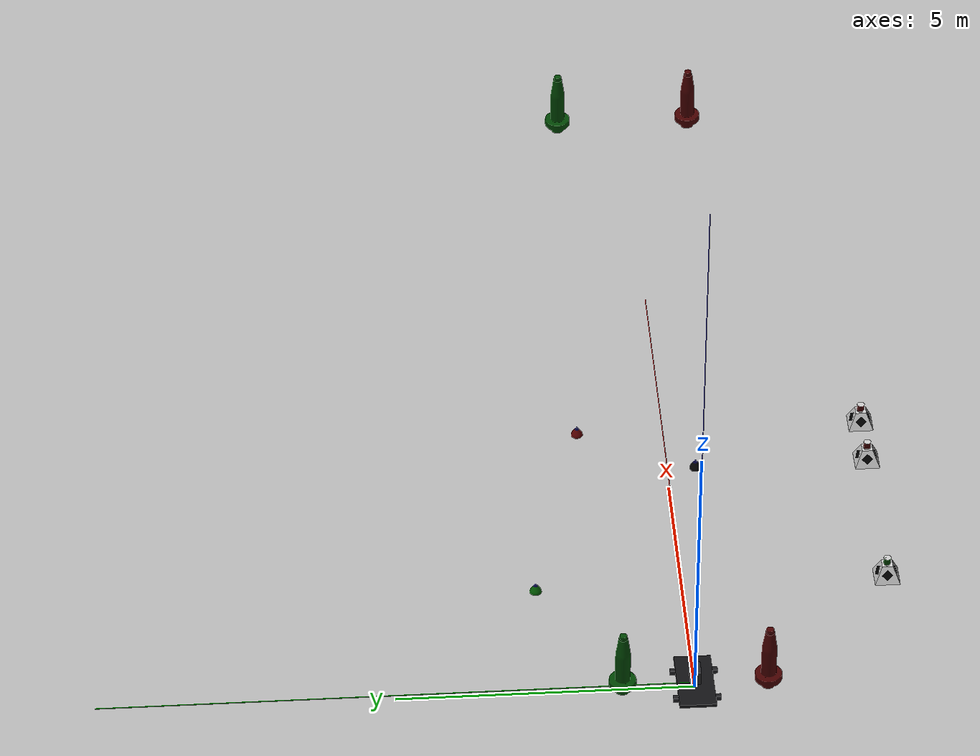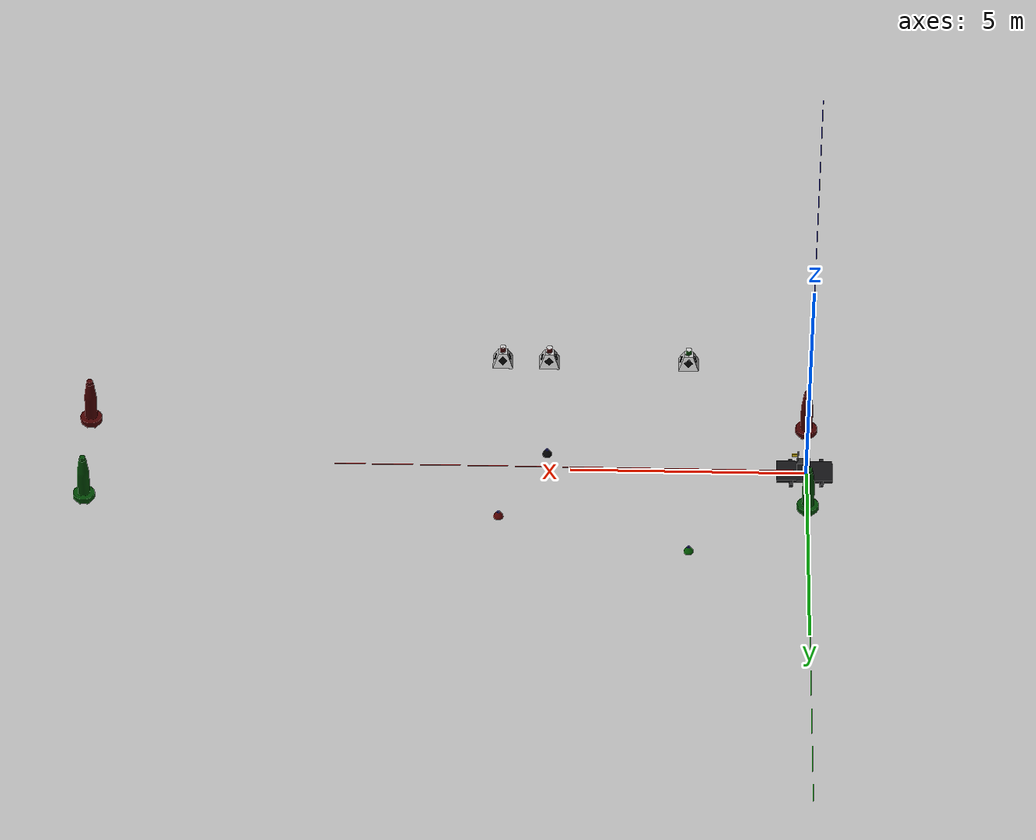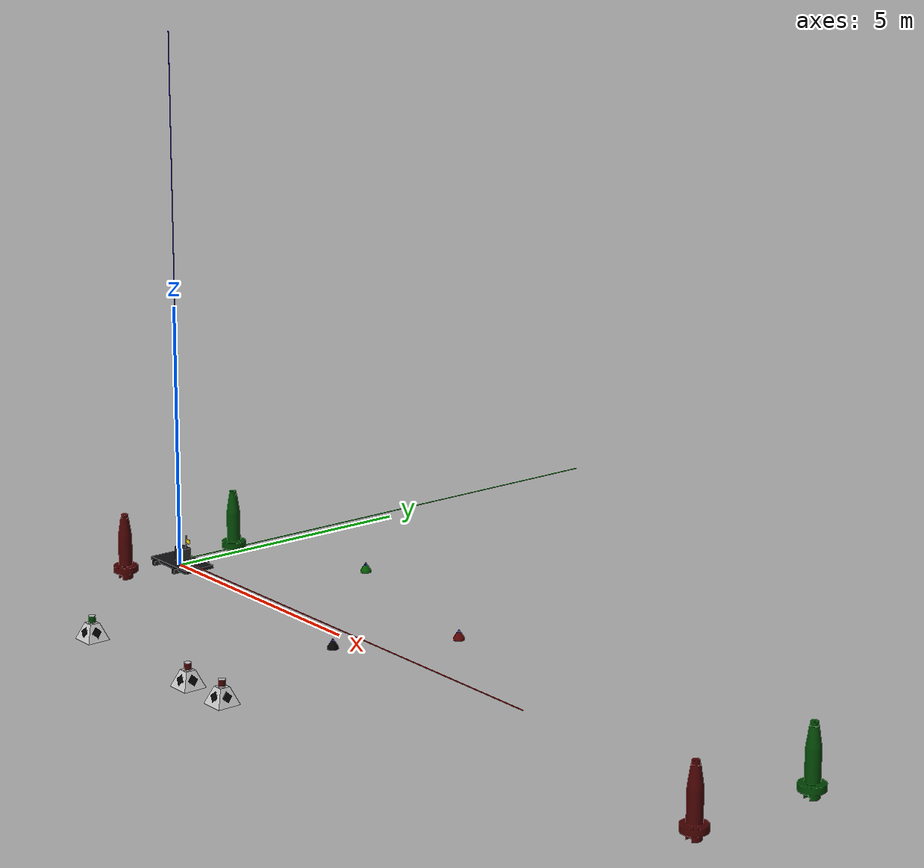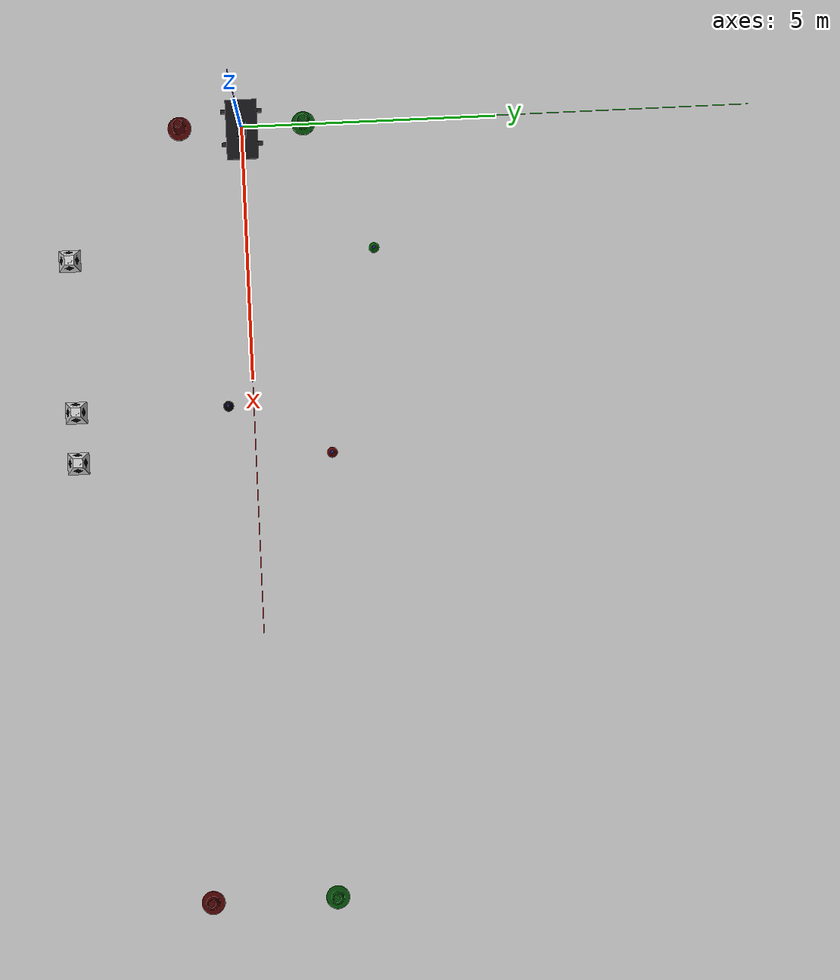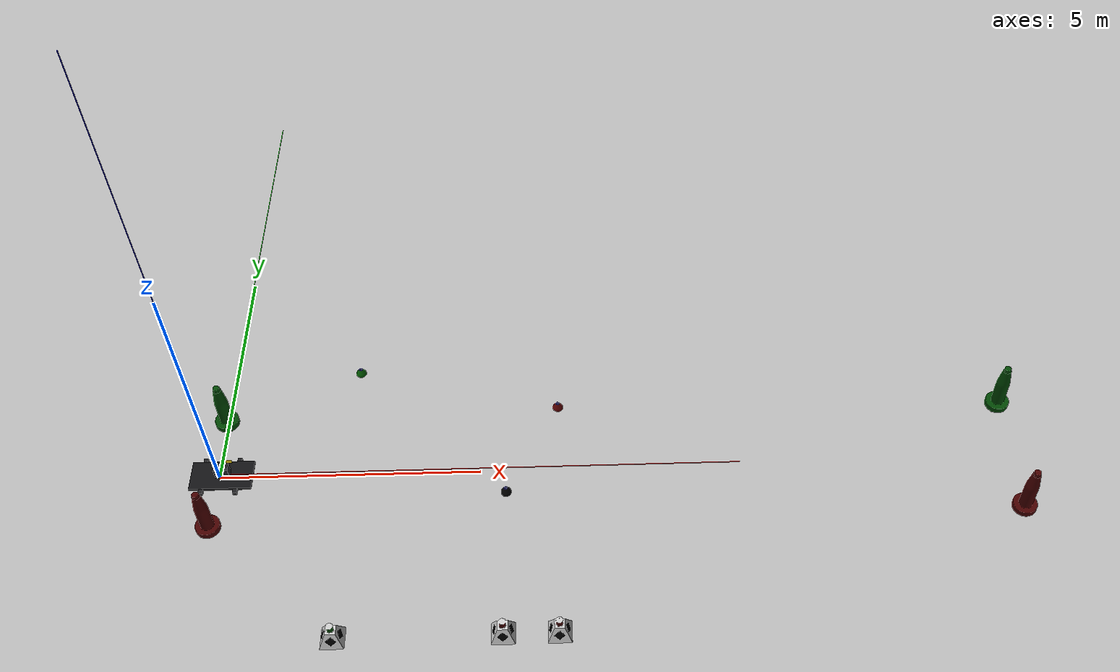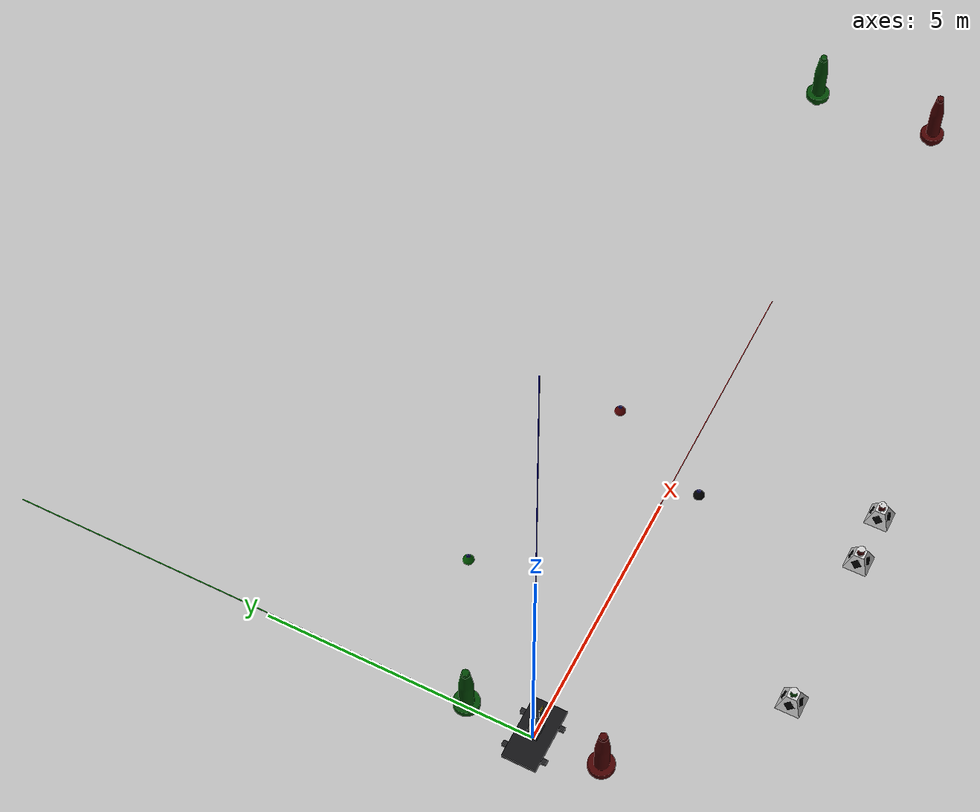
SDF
<?xml version="1.0" ?>
<sdf version="1.6">
  <world name="aquatonomous_course">
    <plugin filename="gz-sim-physics-system" name="gz::sim::systems::Physics"></plugin>
    <plugin filename="gz-sim-sensors-system" name="gz::sim::systems::Sensors">
      <render_engine>ogre2</render_engine>
      <background_color>0.8 0.8 0.8</background_color>
    </plugin>
    <plugin filename="gz-sim-scene-broadcaster-system" name="gz::sim::systems::SceneBroadcaster"></plugin>
    <plugin filename="gz-sim-user-commands-system" name="gz::sim::systems::UserCommands"></plugin>
    <plugin filename="gz-sim-imu-system" name="gz::sim::systems::Imu"></plugin>

    <scene>
      <ambient>1.0 1.0 1.0</ambient>
      <background>0.8 0.8 0.8</background>
      <sky></sky>
    </scene>

    <light type="directional" name="sun">
      <cast_shadows>true</cast_shadows>
      <pose>0 0 10 0 0 0</pose>
      <diffuse>0.8 0.8 0.8 1</diffuse>
      <specular>0.6 0.6 0.6 1</specular>
      <direction>-0.5 0.1 -0.9</direction>
    </light>

    <include>
      <pose>0 0 0 0 0 0</pose>
      <uri>model://waves</uri>
    </include>

    <model name="axes">
      <static>1</static>
      <link name="link">
        <visual name="r">
          <cast_shadows>0</cast_shadows>
          <pose>5 0 0.1 0 0 0</pose>
          <geometry><box><size>10 0.01 0.01</size></box></geometry>
          <material>
            <ambient>1 0 0 1</ambient>
            <diffuse>1 0 0 1</diffuse>
            <emissive>1 0 0 1</emissive>
          </material>
        </visual>
        <visual name="g">
          <cast_shadows>0</cast_shadows>
          <pose>0 5 0.1 0 0 0</pose>
          <geometry><box><size>0.01 10 0.01</size></box></geometry>
          <material>
            <ambient>0 1 0 1</ambient>
            <diffuse>0 1 0 1</diffuse>
            <emissive>0 1 0 1</emissive>
          </material>
        </visual>
        <visual name="b">
          <cast_shadows>0</cast_shadows>
          <pose>0 0 5.1 0 0 0</pose>
          <geometry><box><size>0.01 0.01 10</size></box></geometry>
          <material>
            <ambient>0 0 1 1</ambient>
            <diffuse>0 0 1 1</diffuse>
            <emissive>0 0 1 1</emissive>
          </material>
        </visual>
      </link>
    </model>

    <include>
      <pose>0 0 0 0 0 0</pose>
      <uri>model://ourboat</uri>
    </include>

    <include>
      <name>GreenRopehold_0</name>
      <pose>2.50 2.50 0 0 0 0</pose>
      <uri>model://GreenRopehold</uri>
    </include>
    <include>
      <name>ColourIndicatorGreen_1</name>
      <pose>2.50 -3.50 0 0 0 0</pose>
      <uri>model://ColourIndicatorGreen</uri>
    </include>
    <!-- Gate 1: red left, green right, 8 ft (2.44 m) apart -->
    <include>
      <name>RedSurMark_2</name>
      <pose>0 -1.22 0 0 0 0</pose>
      <uri>model://RedSurMark</uri>
    </include>
    <include>
      <name>GreenSurMark_6</name>
      <pose>0 1.22 0 0 0 0</pose>
      <uri>model://GreenSurMark</uri>
    </include>
    <include>
      <name>BlackRopehold_3</name>
      <pose>5.50 -0.50 0 0 0 0</pose>
      <uri>model://BlackRopehold</uri>
    </include>
    <include>
      <name>ColourIndicatorRed_4</name>
      <pose>5.50 -3.50 0 0 0 0</pose>
      <uri>model://ColourIndicatorRed</uri>
    </include>
    <include>
      <name>ColourIndicatorRed_7</name>
      <pose>6.50 -3.50 0 0 0 0</pose>
      <uri>model://ColourIndicatorRed</uri>
    </include>
    <include>
      <name>RedRopehold_5</name>
      <pose>6.50 1.50 0 0 0 0</pose>
      <uri>model://RedRopehold</uri>
    </include>
    <!-- Gate 2: 50 ft (15.24 m) after gate 1, same 8 ft width -->
    <include>
      <name>RedSurMark_3</name>
      <pose>15.24 -1.22 0 0 0 0</pose>
      <uri>model://RedSurMark</uri>
    </include>
    <include>
      <name>GreenSurMark_7</name>
      <pose>15.24 1.22 0 0 0 0</pose>
      <uri>model://GreenSurMark</uri>
    </include>
  </world>
</sdf>

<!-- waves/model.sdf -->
<sdf version="1.6">
  <model name="waves">
    <static>true</static>
    <link name="link">
      <visual name= "wave_visual">
        <geometry>
          <mesh>
            <uri>meshes/mesh.dae</uri>
          </mesh>
        </geometry>
        <plugin
            filename="libWaveVisual.so"
            name="ignition::gazebo::systems::WaveVisual">
          <shader>
            <vertex>materials/programs/GerstnerWaves_vs_330.glsl</vertex>
            <fragment>materials/programs/GerstnerWaves_fs_330.glsl</fragment>
          </shader>
          <wavefield>
            <size>1000 1000</size>
            <cell_count>50 50</cell_count>
            <wave>
              <model>PMS</model>
              <period>5</period>
              <number>3</number>
              <scale>5.1</scale>
              <gain>0.3</gain>
              <direction>1 0</direction>
              <angle>0.4</angle>
              <tau>2.0</tau>
              <amplitude>0.0</amplitude>
              <steepness>0.0</steepness>
            </wave>
          </wavefield>
        </plugin>
        <visibility_flags>8</visibility_flags>
      </visual>
    </link>
  </model>
</sdf>

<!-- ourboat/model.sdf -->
<sdf version="1.9">
  <model name="ourboat">
    <link name="base_link">
      <inertial>
        <pose>-0.05 0 -0.15 0 0 0</pose>
        <mass>30.0</mass>
        <inertia>
          <ixx>2.42369</ixx>
          <ixy>0</ixy>
          <ixz>0</ixz>
          <iyy>3.9235025</iyy>
          <iyz>0</iyz>
          <izz>5.6403125</izz>
        </inertia>
      </inertial>
      <collision name="hull_collision">
        <geometry>
          <mesh>
            <uri>models://ourboat/meshes/blueboat_hull_collision.stl</uri>
          </mesh>
        </geometry>
      </collision>
      <visual name="hull_visual">
        <geometry>
          <mesh>
            <uri>models://ourboat/meshes/blueboat_hull_collision.stl</uri>
          </mesh>
        </geometry>
        <material>
          <diffuse>0 0 1 1</diffuse>
          <ambient>1 0 1 1</ambient>
          <specular>0.7 0.7 0.7 1</specular>
          <pbr>
            <metal>
              <metalness>0.5</metalness>
              <roughness>0.5</roughness>
            </metal>
          </pbr>
        </material>
      </visual>
      <!-- Safe primitive visuals restore the missing bridge/deck silhouette
           without relying on the crash-prone COLLADA meshes. -->
      <visual name="deck_visual">
        <pose>0.05 0 0.07 0 0 0</pose>
        <geometry>
          <box>
            <size>1.18 0.62 0.06</size>
          </box>
        </geometry>
        <material>
          <diffuse>0.07 0.07 0.08 1</diffuse>
          <ambient>0.07 0.07 0.08 1</ambient>
          <specular>0.2 0.2 0.2 1</specular>
          <pbr>
            <metal>
              <metalness>0.3</metalness>
              <roughness>0.75</roughness>
            </metal>
          </pbr>
        </material>
      </visual>
      <visual name="fore_crossbeam_visual">
        <pose>0.34 0 0.04 0 0 0</pose>
        <geometry>
          <box>
            <size>0.08 0.80 0.08</size>
          </box>
        </geometry>
        <material>
          <diffuse>0.12 0.12 0.13 1</diffuse>
          <ambient>0.12 0.12 0.13 1</ambient>
          <specular>0.2 0.2 0.2 1</specular>
          <pbr>
            <metal>
              <metalness>0.6</metalness>
              <roughness>0.45</roughness>
            </metal>
          </pbr>
        </material>
      </visual>
      <visual name="aft_crossbeam_visual">
        <pose>-0.31 0 0.04 0 0 0</pose>
        <geometry>
          <box>
            <size>0.08 0.80 0.08</size>
          </box>
        </geometry>
        <material>
          <diffuse>0.12 0.12 0.13 1</diffuse>
          <ambient>0.12 0.12 0.13 1</ambient>
          <specular>0.2 0.2 0.2 1</specular>
          <pbr>
            <metal>
              <metalness>0.6</metalness>
              <roughness>0.45</roughness>
            </metal>
          </pbr>
        </material>
      </visual>
      <visual name="console_visual">
        <pose>0.08 0 0.24 0 0 0</pose>
        <geometry>
          <box>
            <size>0.28 0.18 0.26</size>
          </box>
        </geometry>
        <material>
          <diffuse>0.16 0.16 0.17 1</diffuse>
          <ambient>0.16 0.16 0.17 1</ambient>
          <specular>0.25 0.25 0.25 1</specular>
          <pbr>
            <metal>
              <metalness>0.4</metalness>
              <roughness>0.55</roughness>
            </metal>
          </pbr>
        </material>
      </visual>
      <visual name="mast_visual">
        <pose>0.2 0 0.42 0 0 0</pose>
        <geometry>
          <cylinder>
            <radius>0.015</radius>
            <length>0.42</length>
          </cylinder>
        </geometry>
        <material>
          <diffuse>0.85 0.85 0.87 1</diffuse>
          <ambient>0.85 0.85 0.87 1</ambient>
          <specular>0.3 0.3 0.3 1</specular>
        </material>
      </visual>
      <visual name="flag_visual_safe">
        <pose>0.27 0 0.53 0 0 0</pose>
        <geometry>
          <box>
            <size>0.12 0.01 0.08</size>
          </box>
        </geometry>
        <material>
          <diffuse>0.95 0.82 0.08 1</diffuse>
          <ambient>0.95 0.82 0.08 1</ambient>
          <specular>0.1 0.1 0.1 1</specular>
        </material>
      </visual>
      <!-- DAE visuals commented out due to ColladaLoader crash - hull STL provides basic visualization -->
    </link>

    <link name="motor_stbd_link">
      <pose degrees="true">-0.488 -0.295 -0.272 -90 0 90</pose>
      <inertial>
        <mass>0.2</mass>
        <inertia>
          <ixx>0.1</ixx>
          <ixy>0</ixy>
          <ixz>0</ixz>
          <iyy>0.1</iyy>
          <iyz>0</iyz>
          <izz>0.1</izz>
        </inertia>
      </inertial>
      <!-- prop collision/visual commented out due to ColladaLoader crash -->
    </link>
    <joint name="motor_stbd_joint" type="revolute">
      <parent>base_link</parent>
      <child>motor_stbd_link</child>
      <axis>
        <xyz>0 0 -1</xyz>
        <limit>
          <lower>-1e16</lower>
          <upper>1e16</upper>
        </limit>
        <dynamics>
          <damping>0.02</damping>
        </dynamics>
      </axis>
    </joint>

    <link name="motor_port_link">
      <pose degrees="true">-0.488 0.295 -0.272 -90 0 90</pose>
      <inertial>
        <mass>0.2</mass>
        <inertia>
          <ixx>0.1</ixx>
          <ixy>0</ixy>
          <ixz>0</ixz>
          <iyy>0.1</iyy>
          <iyz>0</iyz>
          <izz>0.1</izz>
        </inertia>
      </inertial>
      <!-- prop collision/visual commented out due to ColladaLoader crash -->
    </link>
    <joint name="motor_port_joint" type="revolute">
      <parent>base_link</parent>
      <child>motor_port_link</child>
      <axis>
        <xyz>0 0 -1</xyz>
        <limit>
          <lower>-1e16</lower>
          <upper>1e16</upper>
        </limit>
        <dynamics>
          <damping>0.02</damping>
        </dynamics>
      </axis>
    </joint>

    <!-- sensors -->
    <link name="imu_link">
      <inertial>
        <pose>0 0 0 0 0 0</pose>
        <mass>0.1</mass>
        <inertia>
          <ixx>0.0001</ixx>
          <ixy>0</ixy>
          <ixz>0</ixz>
          <iyy>0.0001</iyy>
          <iyz>0</iyz>
          <izz>0.0001</izz>
        </inertia>
      </inertial>
      <sensor name="imu_sensor" type="imu">
        <pose degrees="true">0 0 0 180 0 0</pose>
        <always_on>1</always_on>
        <update_rate>1000.0</update_rate>
      </sensor>
    </link>
    <joint name="imu_joint" type="revolute">
      <child>imu_link</child>
      <parent>base_link</parent>
      <axis>
        <xyz>0 0 1</xyz>
        <limit>
          <lower>0</lower>
          <upper>0</upper>
        </limit>
        <dynamics>
          <damping>1.0</damping>
        </dynamics>
      </axis>
    </joint>

    <link name="lidar_link">
      <inertial>
        <pose>0 0 0 0 0 0</pose>
        <mass>0.1</mass>
        <inertia>
          <ixx>0.0001</ixx>
          <ixy>0</ixy>
          <ixz>0</ixz>
          <iyy>0.0001</iyy>
          <iyz>0</iyz>
          <izz>0.0001</izz>
        </inertia>
      </inertial>
      <sensor name="lidar" type="gpu_lidar">
        <!-- 30 deg down (was 15 deg): pitch -0.5236 rad -->
        <pose>0.3 0 0.2 -0.5236 0 -1.59</pose>
        <always_on>1</always_on>
        <update_rate>10.0</update_rate>
	<topic>lidar_topic</topic>
	<visualize>true</visualize>
	<lidar>
		<scan>
			<horizontal>
				<samples>720</samples>
				<resolution>1</resolution>
				<min_angle>-3.14</min_angle>
				<max_angle>3.14</max_angle>
			</horizontal>
			<vertical>
				<samples>360</samples>
				<resolution>1</resolution>
				<min_angle>0</min_angle>
				<max_angle>3.14</max_angle>
			</vertical>
		</scan>
		<range>
			<min>0.15</min>
			<max>15</max>
		</range>
	</lidar>
      </sensor>
    </link>
    <joint name="lidar_joint" type="fixed">
      <child>lidar_link</child>
      <parent>base_link</parent>
    </joint>
    <link name="camera1_link">
      <inertial>
        <pose>0 0 0 0 0 0</pose>
        <mass>0.1</mass>
        <inertia>
          <ixx>0.0001</ixx>
          <ixy>0</ixy>
          <ixz>0</ixz>
          <iyy>0.0001</iyy>
          <iyz>0</iyz>
          <izz>0.0001</izz>
        </inertia>
      </inertial>
      <!-- Left camera: 70 deg left → bridge maps to /camera0/image_raw -->
      <sensor name="camera1" type="camera">
        <pose>0.3 0 0.2 0 0 -1.22173</pose>
        <always_on>1</always_on>
        <update_rate>30.0</update_rate>
	<topic>camera1_topic</topic>
	<visualize>true</visualize>
	<camera>
		<horizontal_fov>1.484</horizontal_fov>
		<image>
			<width>1920</width>
			<height>1200</height>
		</image>
		<clip>
			<near>0.05</near>
			<far>1000</far>
		</clip>
	</camera>
      </sensor>
    </link>
    <joint name="camera1_joint" type="fixed">
      <child>camera1_link</child>
      <parent>base_link</parent>
    </joint>
    <link name="camera2_link">
      <inertial>
        <pose>0 0 0 0 0 0</pose>
        <mass>0.1</mass>
        <inertia>
          <ixx>0.0001</ixx>
          <ixy>0</ixy>
          <ixz>0</ixz>
          <iyy>0.0001</iyy>
          <iyz>0</iyz>
          <izz>0.0001</izz>
        </inertia>
      </inertial>
      <!-- Center camera → bridge maps to /camera1/image_raw -->
      <sensor name="camera2" type="camera">
        <pose>0.3 0 0.2 0 0 0</pose>
        <always_on>1</always_on>
        <update_rate>30.0</update_rate>
	<topic>camera2_topic</topic>
	<visualize>true</visualize>
	<camera>
		<horizontal_fov>1.484</horizontal_fov>
		<image>
			<width>1920</width>
			<height>1200</height>
		</image>
		<clip>
			<near>0.05</near>
			<far>1000</far>
		</clip>
	</camera>
      </sensor>
    </link>
    <joint name="camera2_joint" type="fixed">
      <child>camera2_link</child>
      <parent>base_link</parent>
    </joint>
    <link name="camera3_link">
      <inertial>
        <pose>0 0 0 0 0 0</pose>
        <mass>0.1</mass>
        <inertia>
          <ixx>0.0001</ixx>
          <ixy>0</ixy>
          <ixz>0</ixz>
          <iyy>0.0001</iyy>
          <iyz>0</iyz>
          <izz>0.0001</izz>
        </inertia>
      </inertial>
      <!-- Right camera: 70 deg right → bridge maps to /camera2/image_raw -->
      <sensor name="camera3" type="camera">
        <pose>0.3 0 0.2 0 0 1.22173</pose>
        <always_on>1</always_on>
        <update_rate>30.0</update_rate>
	<topic>camera3_topic</topic>
	<visualize>true</visualize>
	<camera>
		<horizontal_fov>1.484</horizontal_fov>
		<image>
			<width>1920</width>
			<height>1200</height>
		</image>
		<clip>
			<near>0.05</near>
			<far>1000</far>
		</clip>
	</camera>
      </sensor>
    </link>
    <joint name="camera3_joint" type="fixed">
      <child>camera3_link</child>
      <parent>base_link</parent>
    </joint>

    <!-- plugins -->
    <plugin name="gz::sim::systems::JointStatePublisher"
      filename="gz-sim-joint-state-publisher-system">
    </plugin>
    <plugin name="gz::sim::systems::OdometryPublisher"
      filename="gz-sim-odometry-publisher-system">
      <odom_frame>odom</odom_frame>
      <robot_base_frame>base_link</robot_base_frame>
      <dimensions>3</dimensions>
    </plugin>

    <!-- left motor thruster cw -->
    <plugin name="gz::sim::systems::Thruster"
      filename="gz-sim-thruster-system">
      <namespace>ourboat</namespace>
      <joint_name>motor_port_joint</joint_name>
      <thrust_coefficient>-0.02</thrust_coefficient>
      <fluid_density>1025</fluid_density>
      <propeller_diameter>0.112</propeller_diameter>
      <velocity_control>0</velocity_control>
      <use_angvel_cmd>0</use_angvel_cmd>
    </plugin>

    <!-- right motor thruster ccw -->
    <plugin name="gz::sim::systems::Thruster"
      filename="gz-sim-thruster-system">
      <namespace>ourboat</namespace>
      <joint_name>motor_stbd_joint</joint_name>
      <thrust_coefficient>0.02</thrust_coefficient>
      <fluid_density>1025</fluid_density>
      <propeller_diameter>0.112</propeller_diameter>
      <velocity_control>0</velocity_control>
      <use_angvel_cmd>0</use_angvel_cmd>
    </plugin>

    <!-- hydrodynamics plugin -->
    <plugin name="gz::sim::systems::Hydrodynamics"
        filename="gz-waves1-hydrodynamics-system">
        <enable>ourboat::base_link</enable>
        <hydrodynamics>
          <damping_on>1</damping_on>
          <viscous_drag_on>1</viscous_drag_on>
          <pressure_drag_on>1</pressure_drag_on>
        </hydrodynamics>
    </plugin>

      <!-- ardupilot plugin -->
    <plugin name="ArduPilotPlugin"
      filename="ArduPilotPlugin">
      <fdm_addr>127.0.0.1</fdm_addr>
      <fdm_port_in>9002</fdm_port_in>
      <connectionTimeoutMaxCount>5</connectionTimeoutMaxCount>
      <lock_step>1</lock_step>
      <gazeboXYZToNED degrees="true">0 0 0 180 0 90</gazeboXYZToNED>
      <modelXYZToAirplaneXForwardZDown degrees="true">0 0 0 180 0 0</modelXYZToAirplaneXForwardZDown>
      <imuName>imu_link::imu_sensor</imuName>

      <!--
        port motor cw

        SERVO1_FUNCTION 73 (ThrottleLeft)
        SERVO1_MAX 2000
        SERVO1_MIN 1000
      -->
      <control channel="0">
        <jointName>motor_port_joint</jointName>
        <multiplier>70</multiplier>
        <offset>-0.5</offset>
        <servo_min>1000</servo_min>
        <servo_max>2000</servo_max>
        <type>COMMAND</type>
        <cmd_topic>/model/ourboat/joint/motor_port_joint/cmd_thrust</cmd_topic>
      </control>

      <!--
        stbd motor ccw

        SERVO3_FUNCTION 74 (ThrottleRight)
        SERVO3_MAX 2000
        SERVO3_MIN 1000
      -->
      <control channel="2">
        <jointName>motor_stbd_joint</jointName>
        <multiplier>70</multiplier>
        <offset>-0.5</offset>
        <servo_min>1000</servo_min>
        <servo_max>2000</servo_max>
        <type>COMMAND</type>
        <cmd_topic>/model/ourboat/joint/motor_stbd_joint/cmd_thrust</cmd_topic>
      </control>
    </plugin>

  </model>
</sdf>

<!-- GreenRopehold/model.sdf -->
<sdf version='1.6'>
  <model name='Green Ropehold Buoy'>
    <static>false</static>
    <plugin
        filename="gz-waves1-hydrodynamics-system"
        name="gz::sim::systems::Hydrodynamics">
    </plugin>
    <link name="base_link">
      <visual name="visual">
        <pose>0 0 0 0 0 0</pose>
        <geometry>
          <mesh>
            <uri>model://GreenRopehold/meshes/GreenRopehold.dae</uri>
            <scale>0.001 0.001 0.001</scale>
          </mesh>
        </geometry>
      </visual>
      <collision name="collision">
        <pose>0 0 0 0 0 0</pose>
        <geometry>
          <sphere>
            <radius>0.25</radius>
          </sphere>
        </geometry>
      </collision>
      <inertial>
        <pose>0 0 0 0 0 0</pose>
        <mass>20</mass>
        <inertia>
          <ixx>0.1636</ixx>
          <ixy>0.0</ixy>
          <ixz>0.0</ixz>
          <iyy>0.1636</iyy>
          <iyz>0.0</iyz>
          <izz>0.1636</izz>
        </inertia>
      </inertial>
    </link>
  </model>
</sdf>

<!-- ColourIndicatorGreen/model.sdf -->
<sdf version='1.6'>
  <model name='Green Colour Indicator'>
    <static>false</static>
    <plugin
        filename="gz-waves1-hydrodynamics-system"
        name="gz::sim::systems::Hydrodynamics">
    </plugin>
    <link name="base_link">
      <visual name="visual">
        <pose>0 0 0 0 0 0</pose>
        <geometry>
          <mesh>
            <uri>model://ColourIndicatorGreen/meshes/ColourIndicatorGreen.dae</uri>
            <scale>0.001 0.001 0.001</scale>
          </mesh>
        </geometry>
      </visual>
      <collision name="collision">
        <pose>0 0 0 0 0 0</pose>
        <geometry>
          <sphere>
            <radius>0.25</radius>
          </sphere>
        </geometry>
      </collision>
      <inertial>
        <pose>0 0 0 0 0 0</pose>
        <mass>20</mass>
        <inertia>
          <ixx>0.1636</ixx>
          <ixy>0.0</ixy>
          <ixz>0.0</ixz>
          <iyy>0.1636</iyy>
          <iyz>0.0</iyz>
          <izz>0.1636</izz>
        </inertia>
      </inertial>
    </link>
  </model>
</sdf>

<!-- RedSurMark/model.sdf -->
<sdf version='1.6'>
  <model name='Red Surmark Buoy'>
    <static>false</static>
    <plugin
        filename="gz-waves1-hydrodynamics-system"
        name="gz::sim::systems::Hydrodynamics">
    </plugin>
    <link name="base_link">
      <visual name="visual">
        <pose>0 0 0 0 0 0</pose>
        <geometry>
          <mesh>
            <uri>model://RedSurMark/meshes/RedSurmark.dae</uri>
            <scale>0.001 0.001 0.001</scale>
          </mesh>
        </geometry>
      </visual>
      <collision name="collision">
        <pose>0 0 0 0 0 0</pose>
        <geometry>
          <sphere>
            <radius>0.25</radius>
          </sphere>
        </geometry>
      </collision>
      <inertial>
        <pose>0 0 0 0 0 0</pose>
        <mass>50</mass>
        <inertia>
          <ixx>0.1636</ixx>
          <ixy>0.0</ixy>
          <ixz>0.0</ixz>
          <iyy>0.1636</iyy>
          <iyz>0.0</iyz>
          <izz>0.1636</izz>
        </inertia>
      </inertial>
    </link>
  </model>
</sdf>

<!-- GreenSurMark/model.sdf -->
<sdf version='1.6'>
  <model name='Green Surmark Buoy'>
    <static>false</static>
    <plugin
        filename="gz-waves1-hydrodynamics-system"
        name="gz::sim::systems::Hydrodynamics">
    </plugin>
    <link name="base_link">
      <visual name="visual">
        <pose>0 0 0 0 0 0</pose>
        <geometry>
          <mesh>
            <uri>model://GreenSurMark/meshes/GreenSurmark.dae</uri>
            <scale>0.001 0.001 0.001</scale>
          </mesh>
        </geometry>
      </visual>
      <collision name="collision">
        <pose>0 0 0 0 0 0</pose>
        <geometry>
          <sphere>
            <radius>0.25</radius>
          </sphere>
        </geometry>
      </collision>
      <inertial>
        <pose>0 0 0 0 0 0</pose>
        <mass>50</mass>
        <inertia>
          <ixx>0.1636</ixx>
          <ixy>0.0</ixy>
          <ixz>0.0</ixz>
          <iyy>0.1636</iyy>
          <iyz>0.0</iyz>
          <izz>0.1636</izz>
        </inertia>
      </inertial>
    </link>
  </model>
</sdf>

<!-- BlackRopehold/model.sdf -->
<sdf version='1.6'>
  <model name='Black Ropehold Buoy'>
    <static>false</static>
    <plugin
        filename="gz-waves1-hydrodynamics-system"
        name="gz::sim::systems::Hydrodynamics">
    </plugin>
    <link name="base_link">
      <visual name="visual">
        <pose>0 0 0 0 0 0</pose>
        <geometry>
          <mesh>
            <uri>model://BlackRopehold/meshes/BlackRopehold.dae</uri>
            <scale>0.001 0.001 0.001</scale>
          </mesh>
        </geometry>
      </visual>
      <collision name="collision">
        <pose>0 0 0 0 0 0</pose>
        <geometry>
          <sphere>
            <radius>0.25</radius>
          </sphere>
        </geometry>
      </collision>
      <inertial>
        <pose>0 0 0 0 0 0</pose>
        <mass>20</mass>
        <inertia>
          <ixx>0.1636</ixx>
          <ixy>0.0</ixy>
          <ixz>0.0</ixz>
          <iyy>0.1636</iyy>
          <iyz>0.0</iyz>
          <izz>0.1636</izz>
        </inertia>
      </inertial>
    </link>
  </model>
</sdf>

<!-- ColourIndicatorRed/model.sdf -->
<sdf version='1.6'>
  <model name='Red Colour Indicator'>
    <static>false</static>
    <plugin
        filename="gz-waves1-hydrodynamics-system"
        name="gz::sim::systems::Hydrodynamics">
    </plugin>
    <link name="base_link">
      <visual name="visual">
        <pose>0 0 0 0 0 0</pose>
        <geometry>
          <mesh>
            <uri>model://ColourIndicatorRed/meshes/ColourIndicatorRed.dae</uri>
            <scale>0.001 0.001 0.001</scale>
          </mesh>
        </geometry>
      </visual>
      <collision name="collision">
        <pose>0 0 0 0 0 0</pose>
        <geometry>
          <sphere>
            <radius>0.25</radius>
          </sphere>
        </geometry>
      </collision>
      <inertial>
        <pose>0 0 0 0 0 0</pose>
        <mass>20</mass>
        <inertia>
          <ixx>0.1636</ixx>
          <ixy>0.0</ixy>
          <ixz>0.0</ixz>
          <iyy>0.1636</iyy>
          <iyz>0.0</iyz>
          <izz>0.1636</izz>
        </inertia>
      </inertial>
    </link>
  </model>
</sdf>

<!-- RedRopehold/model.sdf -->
<sdf version='1.6'>
  <model name='Red Ropehold Buoy'>
    <static>false</static>
    <plugin
        filename="gz-waves1-hydrodynamics-system"
        name="gz::sim::systems::Hydrodynamics">
    </plugin>
    <link name="base_link">
      <visual name="visual">
        <pose>0 0 0 0 0 0</pose>
        <geometry>
          <mesh>
            <uri>model://RedRopehold/meshes/RedRopehold.dae</uri>
            <scale>0.001 0.001 0.001</scale>
          </mesh>
        </geometry>
      </visual>
      <collision name="collision">
        <pose>0 0 0 0 0 0</pose>
        <geometry>
          <sphere>
            <radius>0.25</radius>
          </sphere>
        </geometry>
      </collision>
      <inertial>
        <pose>0 0 0 0 0 0</pose>
        <mass>20</mass>
        <inertia>
          <ixx>0.1636</ixx>
          <ixy>0.0</ixy>
          <ixz>0.0</ixz>
          <iyy>0.1636</iyy>
          <iyz>0.0</iyz>
          <izz>0.1636</izz>
        </inertia>
      </inertial>
    </link>
  </model>
</sdf>
